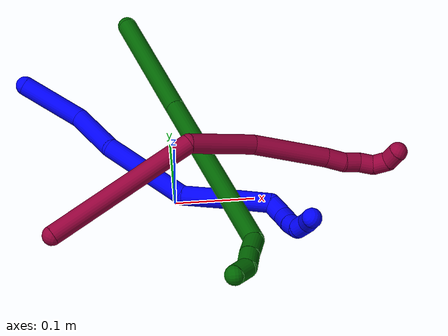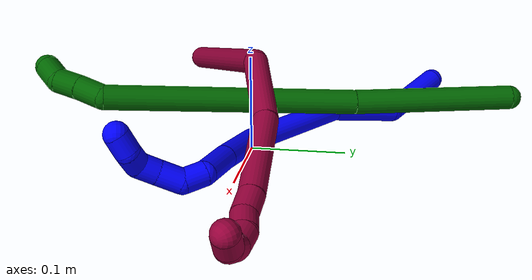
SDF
<sdf version="1.7">
 <world name="default">
  <model name="photoneo_s_sensor">
   <static>1</static>
   <pose>0 0 2 1.57079 1.57079 3.14159</pose>
   <link name="link">
    <inertial><mass>0.1</mass></inertial>
    <sensor name="sensor" type="depth">
     <update_rate>30</update_rate>
     <camera>
      <horizontal_fov>1.22</horizontal_fov>
      <image><width>1920</width><height>1200</height><format>B8G8R8</format></image>
      <clip><near>0.1</near><far>4</far></clip>
      <depth_camera><output>points</output></depth_camera>
     </camera>
     <plugin name="camera_plugin" filename="libgazebo_ros_depth_camera.so">
      <baseline>0.2</baseline>
      <alwaysOn>1</alwaysOn>
      <updateRate>0.0</updateRate>
      <cameraName>camera_ir</cameraName>
      <imageTopicName>/camera/color/image_raw</imageTopicName>
      <cameraInfoTopicName>/camera/color/camera_info</cameraInfoTopicName>
      <depthImageTopicName>/camera/depth/image_raw</depthImageTopicName>
      <depthImageCameraInfoTopicName>/camera/depth/camera_info</depthImageCameraInfoTopicName>
      <pointCloudTopicName>/camera/depth/points</pointCloudTopicName>
      <frameName>fr_optical</frameName>
      <pointCloudCutoff>0.1</pointCloudCutoff>
      <pointCloudCutoffMax>2.0</pointCloudCutoffMax>
      <distortionK1>0</distortionK1>
      <distortionK2>0</distortionK2>
      <distortionK3>0</distortionK3>
      <distortionT1>0</distortionT1>
      <distortionT2>0</distortionT2>
      <CxPrime>0</CxPrime>
      <Cx>0</Cx>
      <Cy>0</Cy>
      <focalLength>0</focalLength>
      <hackBaseline>0</hackBaseline>
     </plugin>
    </sensor>
   </link>
  </model>
  <model name="bin">
   <static>1</static>
   <link name="bottom">
    <collision name="collision-bottom">
     <pose>0 0 -0.01 0 -0 0</pose>
     <geometry><box><size>0.8 0.6 0.02</size></box></geometry>
     <surface>
      <friction><ode><mu>100</mu><mu2>100</mu2></ode></friction>
      <contact><collide_bitmask>65535</collide_bitmask></contact>
     </surface>
    </collision>
   </link>
   <link name="west_wall">
    <collision name="collision-west_wall">
     <pose>-0.41 0 0.1 0 -0 0</pose>
     <geometry><box><size>0.02 0.6 0.2</size></box></geometry>
     <surface>
      <friction><ode><mu>100</mu><mu2>100</mu2></ode></friction>
      <contact><collide_bitmask>65535</collide_bitmask></contact>
     </surface>
    </collision>
   </link>
   <link name="east_wall">
    <collision name="collision-east_wall">
     <pose>0.41 0 0.1 0 -0 0</pose>
     <geometry><box><size>0.02 0.6 0.2</size></box></geometry>
     <surface>
      <friction><ode><mu>100</mu><mu2>100</mu2></ode></friction>
      <contact><collide_bitmask>65535</collide_bitmask></contact>
     </surface>
    </collision>
   </link>
   <link name="south_wall">
    <collision name="collision-south_wall">
     <pose>0 -0.31 0.1 0 -0 0</pose>
     <geometry><box><size>0.8 0.02 0.2</size></box></geometry>
     <surface>
      <friction><ode><mu>100</mu><mu2>100</mu2></ode></friction>
      <contact><collide_bitmask>65535</collide_bitmask></contact>
     </surface>
    </collision>
   </link>
   <link name="north_wall">
    <collision name="collision-north_wall">
     <pose>0 0.31 0.1 0 -0 0</pose>
     <geometry><box><size>0.8 0.02 0.2</size></box></geometry>
     <surface>
      <friction><ode><mu>100</mu><mu2>100</mu2></ode></friction>
      <contact><collide_bitmask>65535</collide_bitmask></contact>
     </surface>
    </collision>
   </link>
  </model>
  <model name="1">
   <static>0</static>
   <link name="1">
    <collision name="collision-cylinder-e_1_1_4">
     <pose>0.019262 -0.02764 0.025845 0.818947 0.470846 0.207463</pose>
     <geometry><cylinder><radius>0.0125</radius><length>0.084923</length></cylinder></geometry>
     <surface>
      <friction><ode><mu>1.16</mu><mu2>1.16</mu2><slip1>0</slip1><slip2>0</slip2></ode></friction>
      <contact><ode><kp>1e+06</kp><kd>1</kd><max_vel>0</max_vel><min_depth>0.001</min_depth></ode></contact>
     </surface>
    </collision>
    <visual name="visual-cylinder-e_1_1_4">
     <pose>0.019262 -0.02764 0.025845 0.818947 0.470846 0.207463</pose>
     <geometry><cylinder><radius>0.0125</radius><length>0.084923</length></cylinder></geometry>
     <material><ambient>0 0 1 1</ambient></material>
    </visual>
    <collision name="collision-cylinder-e_2_4_5">
     <pose>0.063741 -0.08344 0.054414 1.47437 0.728003 0.666046</pose>
     <geometry><cylinder><radius>0.0125</radius><length>0.075797</length></cylinder></geometry>
     <surface>
      <friction><ode><mu>1.16</mu><mu2>1.16</mu2><slip1>0</slip1><slip2>0</slip2></ode></friction>
      <contact><ode><kp>1e+06</kp><kd>1</kd><max_vel>0</max_vel><min_depth>0.001</min_depth></ode></contact>
     </surface>
    </collision>
    <visual name="visual-cylinder-e_2_4_5">
     <pose>0.063741 -0.08344 0.054414 1.47437 0.728003 0.666046</pose>
     <geometry><cylinder><radius>0.0125</radius><length>0.075797</length></cylinder></geometry>
     <material><ambient>0 0 1 1</ambient></material>
    </visual>
    <collision name="collision-cylinder-e_3_5_6">
     <pose>0.120778 -0.154609 0.08231 1.04128 0.568255 0.331826</pose>
     <geometry><cylinder><radius>0.0125</radius><length>0.118253</length></cylinder></geometry>
     <surface>
      <friction><ode><mu>1.16</mu><mu2>1.16</mu2><slip1>0</slip1><slip2>0</slip2></ode></friction>
      <contact><ode><kp>1e+06</kp><kd>1</kd><max_vel>0</max_vel><min_depth>0.001</min_depth></ode></contact>
     </surface>
    </collision>
    <visual name="visual-cylinder-e_3_5_6">
     <pose>0.120778 -0.154609 0.08231 1.04128 0.568255 0.331826</pose>
     <geometry><cylinder><radius>0.0125</radius><length>0.118253</length></cylinder></geometry>
     <material><ambient>0 0 1 1</ambient></material>
    </visual>
    <collision name="collision-cylinder-e_4_6_7">
     <pose>0.15419 -0.225308 0.125951 0.982543 0.047815 0.025585</pose>
     <geometry><cylinder><radius>0.0125</radius><length>0.066644</length></cylinder></geometry>
     <surface>
      <friction><ode><mu>1.16</mu><mu2>1.16</mu2><slip1>0</slip1><slip2>0</slip2></ode></friction>
      <contact><ode><kp>1e+06</kp><kd>1</kd><max_vel>0</max_vel><min_depth>0.001</min_depth></ode></contact>
     </surface>
    </collision>
    <visual name="visual-cylinder-e_4_6_7">
     <pose>0.15419 -0.225308 0.125951 0.982543 0.047815 0.025585</pose>
     <geometry><cylinder><radius>0.0125</radius><length>0.066644</length></cylinder></geometry>
     <material><ambient>0 0 1 1</ambient></material>
    </visual>
    <collision name="collision-cylinder-e_5_7_8">
     <pose>0.1568 -0.271372 0.158174 0.928245 0.044317 0.022187</pose>
     <geometry><cylinder><radius>0.0125</radius><length>0.045948</length></cylinder></geometry>
     <surface>
      <friction><ode><mu>1.16</mu><mu2>1.16</mu2><slip1>0</slip1><slip2>0</slip2></ode></friction>
      <contact><ode><kp>1e+06</kp><kd>1</kd><max_vel>0</max_vel><min_depth>0.001</min_depth></ode></contact>
     </surface>
    </collision>
    <visual name="visual-cylinder-e_5_7_8">
     <pose>0.1568 -0.271372 0.158174 0.928245 0.044317 0.022187</pose>
     <geometry><cylinder><radius>0.0125</radius><length>0.045948</length></cylinder></geometry>
     <material><ambient>0 0 1 1</ambient></material>
    </visual>
    <collision name="collision-cylinder-e_6_8_9">
     <pose>0.165972 -0.296634 0.176099 1.0263 0.791667 0.462538</pose>
     <geometry><cylinder><radius>0.0125</radius><length>0.02292</length></cylinder></geometry>
     <surface>
      <friction><ode><mu>1.16</mu><mu2>1.16</mu2><slip1>0</slip1><slip2>0</slip2></ode></friction>
      <contact><ode><kp>1e+06</kp><kd>1</kd><max_vel>0</max_vel><min_depth>0.001</min_depth></ode></contact>
     </surface>
    </collision>
    <visual name="visual-cylinder-e_6_8_9">
     <pose>0.165972 -0.296634 0.176099 1.0263 0.791667 0.462538</pose>
     <geometry><cylinder><radius>0.0125</radius><length>0.02292</length></cylinder></geometry>
     <material><ambient>0 0 1 1</ambient></material>
    </visual>
    <collision name="collision-cylinder-e_7_9_10">
     <pose>0.181991 -0.312692 0.176398 1.97027 0.668691 0.964905</pose>
     <geometry><cylinder><radius>0.0125</radius><length>0.025372</length></cylinder></geometry>
     <surface>
      <friction><ode><mu>1.16</mu><mu2>1.16</mu2><slip1>0</slip1><slip2>0</slip2></ode></friction>
      <contact><ode><kp>1e+06</kp><kd>1</kd><max_vel>0</max_vel><min_depth>0.001</min_depth></ode></contact>
     </surface>
    </collision>
    <visual name="visual-cylinder-e_7_9_10">
     <pose>0.181991 -0.312692 0.176398 1.97027 0.668691 0.964905</pose>
     <geometry><cylinder><radius>0.0125</radius><length>0.025372</length></cylinder></geometry>
     <material><ambient>0 0 1 1</ambient></material>
    </visual>
    <collision name="collision-cylinder-e_8_10_11">
     <pose>0.195053 -0.330092 0.17007 1.86093 0.544109 0.716536</pose>
     <geometry><cylinder><radius>0.0125</radius><length>0.020078</length></cylinder></geometry>
     <surface>
      <friction><ode><mu>1.16</mu><mu2>1.16</mu2><slip1>0</slip1><slip2>0</slip2></ode></friction>
      <contact><ode><kp>1e+06</kp><kd>1</kd><max_vel>0</max_vel><min_depth>0.001</min_depth></ode></contact>
     </surface>
    </collision>
    <visual name="visual-cylinder-e_8_10_11">
     <pose>0.195053 -0.330092 0.17007 1.86093 0.544109 0.716536</pose>
     <geometry><cylinder><radius>0.0125</radius><length>0.020078</length></cylinder></geometry>
     <material><ambient>0 0 1 1</ambient></material>
    </visual>
    <collision name="collision-cylinder-e_9_11_12">
     <pose>0.198671 -0.347827 0.1649 1.84887 -0.158294 -0.209475</pose>
     <geometry><cylinder><radius>0.0125</radius><length>0.020018</length></cylinder></geometry>
     <surface>
      <friction><ode><mu>1.16</mu><mu2>1.16</mu2><slip1>0</slip1><slip2>0</slip2></ode></friction>
      <contact><ode><kp>1e+06</kp><kd>1</kd><max_vel>0</max_vel><min_depth>0.001</min_depth></ode></contact>
     </surface>
    </collision>
    <visual name="visual-cylinder-e_9_11_12">
     <pose>0.198671 -0.347827 0.1649 1.84887 -0.158294 -0.209475</pose>
     <geometry><cylinder><radius>0.0125</radius><length>0.020018</length></cylinder></geometry>
     <material><ambient>0 0 1 1</ambient></material>
    </visual>
    <collision name="collision-cylinder-e_10_12_2">
     <pose>0.197453 -0.365311 0.156131 2.21991 0.035895 0.072273</pose>
     <geometry><cylinder><radius>0.0125</radius><length>0.020047</length></cylinder></geometry>
     <surface>
      <friction><ode><mu>1.16</mu><mu2>1.16</mu2><slip1>0</slip1><slip2>0</slip2></ode></friction>
      <contact><ode><kp>1e+06</kp><kd>1</kd><max_vel>0</max_vel><min_depth>0.001</min_depth></ode></contact>
     </surface>
    </collision>
    <visual name="visual-cylinder-e_10_12_2">
     <pose>0.197453 -0.365311 0.156131 2.21991 0.035895 0.072273</pose>
     <geometry><cylinder><radius>0.0125</radius><length>0.020047</length></cylinder></geometry>
     <material><ambient>0 0 1 1</ambient></material>
    </visual>
    <collision name="collision-sphere-2">
     <pose>0.197813 -0.373291 0.150076 0 -0 0</pose>
     <geometry><sphere><radius>0.0125</radius></sphere></geometry>
     <surface>
      <friction><ode><mu>1.16</mu><mu2>1.16</mu2><slip1>0</slip1><slip2>0</slip2></ode></friction>
      <contact><ode><kp>1e+06</kp><kd>1</kd><max_vel>0</max_vel><min_depth>0.001</min_depth></ode></contact>
     </surface>
    </collision>
    <visual name="visual-sphere-2">
     <pose>0.197813 -0.373291 0.150076 0 -0 0</pose>
     <geometry><sphere><radius>0.0125</radius></sphere></geometry>
     <material><ambient>0 0 1 1</ambient></material>
    </visual>
    <collision name="collision-sphere-12">
     <pose>0.197094 -0.357331 0.162186 0 -0 0</pose>
     <geometry><sphere><radius>0.0125</radius></sphere></geometry>
     <surface>
      <friction><ode><mu>1.16</mu><mu2>1.16</mu2><slip1>0</slip1><slip2>0</slip2></ode></friction>
      <contact><ode><kp>1e+06</kp><kd>1</kd><max_vel>0</max_vel><min_depth>0.001</min_depth></ode></contact>
     </surface>
    </collision>
    <visual name="visual-sphere-12">
     <pose>0.197094 -0.357331 0.162186 0 -0 0</pose>
     <geometry><sphere><radius>0.0125</radius></sphere></geometry>
     <material><ambient>0 0 1 1</ambient></material>
    </visual>
    <collision name="collision-sphere-11">
     <pose>0.200249 -0.338323 0.167613 0 -0 0</pose>
     <geometry><sphere><radius>0.0125</radius></sphere></geometry>
     <surface>
      <friction><ode><mu>1.16</mu><mu2>1.16</mu2><slip1>0</slip1><slip2>0</slip2></ode></friction>
      <contact><ode><kp>1e+06</kp><kd>1</kd><max_vel>0</max_vel><min_depth>0.001</min_depth></ode></contact>
     </surface>
    </collision>
    <visual name="visual-sphere-11">
     <pose>0.200249 -0.338323 0.167613 0 -0 0</pose>
     <geometry><sphere><radius>0.0125</radius></sphere></geometry>
     <material><ambient>0 0 1 1</ambient></material>
    </visual>
    <collision name="collision-sphere-10">
     <pose>0.189856 -0.321862 0.172527 0 -0 0</pose>
     <geometry><sphere><radius>0.0125</radius></sphere></geometry>
     <surface>
      <friction><ode><mu>1.16</mu><mu2>1.16</mu2><slip1>0</slip1><slip2>0</slip2></ode></friction>
      <contact><ode><kp>1e+06</kp><kd>1</kd><max_vel>0</max_vel><min_depth>0.001</min_depth></ode></contact>
     </surface>
    </collision>
    <visual name="visual-sphere-10">
     <pose>0.189856 -0.321862 0.172527 0 -0 0</pose>
     <geometry><sphere><radius>0.0125</radius></sphere></geometry>
     <material><ambient>0 0 1 1</ambient></material>
    </visual>
    <collision name="collision-sphere-9">
     <pose>0.174126 -0.303522 0.18027 0 -0 0</pose>
     <geometry><sphere><radius>0.0125</radius></sphere></geometry>
     <surface>
      <friction><ode><mu>1.16</mu><mu2>1.16</mu2><slip1>0</slip1><slip2>0</slip2></ode></friction>
      <contact><ode><kp>1e+06</kp><kd>1</kd><max_vel>0</max_vel><min_depth>0.001</min_depth></ode></contact>
     </surface>
    </collision>
    <visual name="visual-sphere-9">
     <pose>0.174126 -0.303522 0.18027 0 -0 0</pose>
     <geometry><sphere><radius>0.0125</radius></sphere></geometry>
     <material><ambient>0 0 1 1</ambient></material>
    </visual>
    <collision name="collision-sphere-4">
     <pose>0.038524 -0.05528 0.05169 0 -0 0</pose>
     <geometry><sphere><radius>0.0125</radius></sphere></geometry>
     <surface>
      <friction><ode><mu>1.16</mu><mu2>1.16</mu2><slip1>0</slip1><slip2>0</slip2></ode></friction>
      <contact><ode><kp>1e+06</kp><kd>1</kd><max_vel>0</max_vel><min_depth>0.001</min_depth></ode></contact>
     </surface>
    </collision>
    <visual name="visual-sphere-4">
     <pose>0.038524 -0.05528 0.05169 0 -0 0</pose>
     <geometry><sphere><radius>0.0125</radius></sphere></geometry>
     <material><ambient>0 0 1 1</ambient></material>
    </visual>
    <collision name="collision-sphere-1">
     <geometry><sphere><radius>0.0125</radius></sphere></geometry>
     <surface>
      <friction><ode><mu>1.16</mu><mu2>1.16</mu2><slip1>0</slip1><slip2>0</slip2></ode></friction>
      <contact><ode><kp>1e+06</kp><kd>1</kd><max_vel>0</max_vel><min_depth>0.001</min_depth></ode></contact>
     </surface>
    </collision>
    <visual name="visual-sphere-1">
     <geometry><sphere><radius>0.0125</radius></sphere></geometry>
     <material><ambient>0 0 1 1</ambient></material>
    </visual>
    <collision name="collision-sphere-8">
     <pose>0.157818 -0.289746 0.171928 0 -0 0</pose>
     <geometry><sphere><radius>0.0125</radius></sphere></geometry>
     <surface>
      <friction><ode><mu>1.16</mu><mu2>1.16</mu2><slip1>0</slip1><slip2>0</slip2></ode></friction>
      <contact><ode><kp>1e+06</kp><kd>1</kd><max_vel>0</max_vel><min_depth>0.001</min_depth></ode></contact>
     </surface>
    </collision>
    <visual name="visual-sphere-8">
     <pose>0.157818 -0.289746 0.171928 0 -0 0</pose>
     <geometry><sphere><radius>0.0125</radius></sphere></geometry>
     <material><ambient>0 0 1 1</ambient></material>
    </visual>
    <collision name="collision-sphere-5">
     <pose>0.088958 -0.1116 0.057138 0 -0 0</pose>
     <geometry><sphere><radius>0.0125</radius></sphere></geometry>
     <surface>
      <friction><ode><mu>1.16</mu><mu2>1.16</mu2><slip1>0</slip1><slip2>0</slip2></ode></friction>
      <contact><ode><kp>1e+06</kp><kd>1</kd><max_vel>0</max_vel><min_depth>0.001</min_depth></ode></contact>
     </surface>
    </collision>
    <visual name="visual-sphere-5">
     <pose>0.088958 -0.1116 0.057138 0 -0 0</pose>
     <geometry><sphere><radius>0.0125</radius></sphere></geometry>
     <material><ambient>0 0 1 1</ambient></material>
    </visual>
    <collision name="collision-sphere-6">
     <pose>0.152597 -0.197619 0.107482 0 -0 0</pose>
     <geometry><sphere><radius>0.0125</radius></sphere></geometry>
     <surface>
      <friction><ode><mu>1.16</mu><mu2>1.16</mu2><slip1>0</slip1><slip2>0</slip2></ode></friction>
      <contact><ode><kp>1e+06</kp><kd>1</kd><max_vel>0</max_vel><min_depth>0.001</min_depth></ode></contact>
     </surface>
    </collision>
    <visual name="visual-sphere-6">
     <pose>0.152597 -0.197619 0.107482 0 -0 0</pose>
     <geometry><sphere><radius>0.0125</radius></sphere></geometry>
     <material><ambient>0 0 1 1</ambient></material>
    </visual>
    <collision name="collision-sphere-7">
     <pose>0.155782 -0.252997 0.144421 0 -0 0</pose>
     <geometry><sphere><radius>0.0125</radius></sphere></geometry>
     <surface>
      <friction><ode><mu>1.16</mu><mu2>1.16</mu2><slip1>0</slip1><slip2>0</slip2></ode></friction>
      <contact><ode><kp>1e+06</kp><kd>1</kd><max_vel>0</max_vel><min_depth>0.001</min_depth></ode></contact>
     </surface>
    </collision>
    <visual name="visual-sphere-7">
     <pose>0.155782 -0.252997 0.144421 0 -0 0</pose>
     <geometry><sphere><radius>0.0125</radius></sphere></geometry>
     <material><ambient>0 0 1 1</ambient></material>
    </visual>
    <inertial>
     <pose>0.117007 -0.180171 0.100143 0 -0 0</pose>
     <mass>0.5</mass>
     <inertia>
      <ixx>0.000313</ixx>
      <ixy>0</ixy>
      <ixz>0</ixz>
      <iyy>0.000212</iyy>
      <iyz>0</iyz>
      <izz>8.4e-05</izz>
     </inertia>
    </inertial>
   </link>
   <pose>-0.184834 0.191086 0.032102 -2.47096 0.374016 -1.73083</pose>
  </model>
  <model name="6">
   <static>0</static>
   <link name="6">
    <collision name="collision-cylinder-e_1_1_4">
     <pose>-0.018511 -0.078142 -0.026326 1.89575 -0.22083 -0.30626</pose>
     <geometry><cylinder><radius>0.0125</radius><length>0.169019</length></cylinder></geometry>
     <surface>
      <friction><ode><mu>1.16</mu><mu2>1.16</mu2><slip1>0</slip1><slip2>0</slip2></ode></friction>
      <contact><ode><kp>1e+06</kp><kd>1</kd><max_vel>0</max_vel><min_depth>0.001</min_depth></ode></contact>
     </surface>
    </collision>
    <visual name="visual-cylinder-e_1_1_4">
     <pose>-0.018511 -0.078142 -0.026326 1.89575 -0.22083 -0.30626</pose>
     <geometry><cylinder><radius>0.0125</radius><length>0.169019</length></cylinder></geometry>
     <material><ambient>0 0.392157 0.003922 1</ambient></material>
    </visual>
    <collision name="collision-cylinder-e_2_4_5">
     <pose>-0.059066 -0.27505 -0.090744 1.88117 -0.174933 -0.239284</pose>
     <geometry><cylinder><radius>0.0125</radius><length>0.253316</length></cylinder></geometry>
     <surface>
      <friction><ode><mu>1.16</mu><mu2>1.16</mu2><slip1>0</slip1><slip2>0</slip2></ode></friction>
      <contact><ode><kp>1e+06</kp><kd>1</kd><max_vel>0</max_vel><min_depth>0.001</min_depth></ode></contact>
     </surface>
    </collision>
    <visual name="visual-cylinder-e_2_4_5">
     <pose>-0.059066 -0.27505 -0.090744 1.88117 -0.174933 -0.239284</pose>
     <geometry><cylinder><radius>0.0125</radius><length>0.253316</length></cylinder></geometry>
     <material><ambient>0 0.392157 0.003922 1</ambient></material>
    </visual>
    <collision name="collision-cylinder-e_3_5_6">
     <pose>-0.080881 -0.407378 -0.124793 1.28102 0.016171 0.012053</pose>
     <geometry><cylinder><radius>0.0125</radius><length>0.028308</length></cylinder></geometry>
     <surface>
      <friction><ode><mu>1.16</mu><mu2>1.16</mu2><slip1>0</slip1><slip2>0</slip2></ode></friction>
      <contact><ode><kp>1e+06</kp><kd>1</kd><max_vel>0</max_vel><min_depth>0.001</min_depth></ode></contact>
     </surface>
    </collision>
    <visual name="visual-cylinder-e_3_5_6">
     <pose>-0.080881 -0.407378 -0.124793 1.28102 0.016171 0.012053</pose>
     <geometry><cylinder><radius>0.0125</radius><length>0.028308</length></cylinder></geometry>
     <material><ambient>0 0.392157 0.003922 1</ambient></material>
    </visual>
    <collision name="collision-cylinder-e_4_6_7">
     <pose>-0.080955 -0.432943 -0.118171 1.35919 -0.024679 -0.019941</pose>
     <geometry><cylinder><radius>0.0125</radius><length>0.024562</length></cylinder></geometry>
     <surface>
      <friction><ode><mu>1.16</mu><mu2>1.16</mu2><slip1>0</slip1><slip2>0</slip2></ode></friction>
      <contact><ode><kp>1e+06</kp><kd>1</kd><max_vel>0</max_vel><min_depth>0.001</min_depth></ode></contact>
     </surface>
    </collision>
    <visual name="visual-cylinder-e_4_6_7">
     <pose>-0.080955 -0.432943 -0.118171 1.35919 -0.024679 -0.019941</pose>
     <geometry><cylinder><radius>0.0125</radius><length>0.024562</length></cylinder></geometry>
     <material><ambient>0 0.392157 0.003922 1</ambient></material>
    </visual>
    <collision name="collision-cylinder-e_5_7_2">
     <pose>-0.078421 -0.454314 -0.107983 0.888546 0.230866 0.110274</pose>
     <geometry><cylinder><radius>0.0125</radius><length>0.024794</length></cylinder></geometry>
     <surface>
      <friction><ode><mu>1.16</mu><mu2>1.16</mu2><slip1>0</slip1><slip2>0</slip2></ode></friction>
      <contact><ode><kp>1e+06</kp><kd>1</kd><max_vel>0</max_vel><min_depth>0.001</min_depth></ode></contact>
     </surface>
    </collision>
    <visual name="visual-cylinder-e_5_7_2">
     <pose>-0.078421 -0.454314 -0.107983 0.888546 0.230866 0.110274</pose>
     <geometry><cylinder><radius>0.0125</radius><length>0.024794</length></cylinder></geometry>
     <material><ambient>0 0.392157 0.003922 1</ambient></material>
    </visual>
    <collision name="collision-sphere-2">
     <pose>-0.075585 -0.46368 -0.100373 0 -0 0</pose>
     <geometry><sphere><radius>0.0125</radius></sphere></geometry>
     <surface>
      <friction><ode><mu>1.16</mu><mu2>1.16</mu2><slip1>0</slip1><slip2>0</slip2></ode></friction>
      <contact><ode><kp>1e+06</kp><kd>1</kd><max_vel>0</max_vel><min_depth>0.001</min_depth></ode></contact>
     </surface>
    </collision>
    <visual name="visual-sphere-2">
     <pose>-0.075585 -0.46368 -0.100373 0 -0 0</pose>
     <geometry><sphere><radius>0.0125</radius></sphere></geometry>
     <material><ambient>0 0.392157 0.003922 1</ambient></material>
    </visual>
    <collision name="collision-sphere-7">
     <pose>-0.081258 -0.444947 -0.115592 0 -0 0</pose>
     <geometry><sphere><radius>0.0125</radius></sphere></geometry>
     <surface>
      <friction><ode><mu>1.16</mu><mu2>1.16</mu2><slip1>0</slip1><slip2>0</slip2></ode></friction>
      <contact><ode><kp>1e+06</kp><kd>1</kd><max_vel>0</max_vel><min_depth>0.001</min_depth></ode></contact>
     </surface>
    </collision>
    <visual name="visual-sphere-7">
     <pose>-0.081258 -0.444947 -0.115592 0 -0 0</pose>
     <geometry><sphere><radius>0.0125</radius></sphere></geometry>
     <material><ambient>0 0.392157 0.003922 1</ambient></material>
    </visual>
    <collision name="collision-sphere-6">
     <pose>-0.080652 -0.42094 -0.120749 0 -0 0</pose>
     <geometry><sphere><radius>0.0125</radius></sphere></geometry>
     <surface>
      <friction><ode><mu>1.16</mu><mu2>1.16</mu2><slip1>0</slip1><slip2>0</slip2></ode></friction>
      <contact><ode><kp>1e+06</kp><kd>1</kd><max_vel>0</max_vel><min_depth>0.001</min_depth></ode></contact>
     </surface>
    </collision>
    <visual name="visual-sphere-6">
     <pose>-0.080652 -0.42094 -0.120749 0 -0 0</pose>
     <geometry><sphere><radius>0.0125</radius></sphere></geometry>
     <material><ambient>0 0.392157 0.003922 1</ambient></material>
    </visual>
    <collision name="collision-sphere-5">
     <pose>-0.08111 -0.393816 -0.128837 0 -0 0</pose>
     <geometry><sphere><radius>0.0125</radius></sphere></geometry>
     <surface>
      <friction><ode><mu>1.16</mu><mu2>1.16</mu2><slip1>0</slip1><slip2>0</slip2></ode></friction>
      <contact><ode><kp>1e+06</kp><kd>1</kd><max_vel>0</max_vel><min_depth>0.001</min_depth></ode></contact>
     </surface>
    </collision>
    <visual name="visual-sphere-5">
     <pose>-0.08111 -0.393816 -0.128837 0 -0 0</pose>
     <geometry><sphere><radius>0.0125</radius></sphere></geometry>
     <material><ambient>0 0.392157 0.003922 1</ambient></material>
    </visual>
    <collision name="collision-sphere-1">
     <geometry><sphere><radius>0.0125</radius></sphere></geometry>
     <surface>
      <friction><ode><mu>1.16</mu><mu2>1.16</mu2><slip1>0</slip1><slip2>0</slip2></ode></friction>
      <contact><ode><kp>1e+06</kp><kd>1</kd><max_vel>0</max_vel><min_depth>0.001</min_depth></ode></contact>
     </surface>
    </collision>
    <visual name="visual-sphere-1">
     <geometry><sphere><radius>0.0125</radius></sphere></geometry>
     <material><ambient>0 0.392157 0.003922 1</ambient></material>
    </visual>
    <collision name="collision-sphere-4">
     <pose>-0.037022 -0.156284 -0.052651 0 -0 0</pose>
     <geometry><sphere><radius>0.0125</radius></sphere></geometry>
     <surface>
      <friction><ode><mu>1.16</mu><mu2>1.16</mu2><slip1>0</slip1><slip2>0</slip2></ode></friction>
      <contact><ode><kp>1e+06</kp><kd>1</kd><max_vel>0</max_vel><min_depth>0.001</min_depth></ode></contact>
     </surface>
    </collision>
    <visual name="visual-sphere-4">
     <pose>-0.037022 -0.156284 -0.052651 0 -0 0</pose>
     <geometry><sphere><radius>0.0125</radius></sphere></geometry>
     <material><ambient>0 0.392157 0.003922 1</ambient></material>
    </visual>
    <inertial>
     <pose>-0.048627 -0.232625 -0.073098 0 -0 0</pose>
     <mass>0.5</mass>
     <inertia>
      <ixx>0.001249</ixx>
      <ixy>0</ixy>
      <ixz>0</ixz>
      <iyy>-0.000922</iyy>
      <iyz>0</iyz>
      <izz>0.001983</izz>
     </inertia>
    </inertial>
   </link>
   <pose>-0.045916 0.269535 0.054932 -1.81329 -1.32423 1.81679</pose>
  </model>
  <model name="8">
   <static>0</static>
   <link name="8">
    <collision name="collision-cylinder-e_1_1_4">
     <pose>0.088235 0.024227 0.043324 -0.509883 1.05836 -0.302493</pose>
     <geometry><cylinder><radius>0.0125</radius><length>0.202477</length></cylinder></geometry>
     <surface>
      <friction><ode><mu>1.16</mu><mu2>1.16</mu2><slip1>0</slip1><slip2>0</slip2></ode></friction>
      <contact><ode><kp>1e+06</kp><kd>1</kd><max_vel>0</max_vel><min_depth>0.001</min_depth></ode></contact>
     </surface>
    </collision>
    <visual name="visual-cylinder-e_1_1_4">
     <pose>0.088235 0.024227 0.043324 -0.509883 1.05836 -0.302493</pose>
     <geometry><cylinder><radius>0.0125</radius><length>0.202477</length></cylinder></geometry>
     <material><ambient>0.584314 0 0.227451 1</ambient></material>
    </visual>
    <collision name="collision-cylinder-e_2_4_5">
     <pose>0.208418 0.033439 0.115852 0.474885 0.771663 0.195973</pose>
     <geometry><cylinder><radius>0.0125</radius><length>0.09163</length></cylinder></geometry>
     <surface>
      <friction><ode><mu>1.16</mu><mu2>1.16</mu2><slip1>0</slip1><slip2>0</slip2></ode></friction>
      <contact><ode><kp>1e+06</kp><kd>1</kd><max_vel>0</max_vel><min_depth>0.001</min_depth></ode></contact>
     </surface>
    </collision>
    <visual name="visual-cylinder-e_2_4_5">
     <pose>0.208418 0.033439 0.115852 0.474885 0.771663 0.195973</pose>
     <geometry><cylinder><radius>0.0125</radius><length>0.09163</length></cylinder></geometry>
     <material><ambient>0.584314 0 0.227451 1</ambient></material>
    </visual>
    <collision name="collision-cylinder-e_3_5_6">
     <pose>0.267105 0.003596 0.184958 0.355795 0.56086 0.103479</pose>
     <geometry><cylinder><radius>0.0125</radius><length>0.100538</length></cylinder></geometry>
     <surface>
      <friction><ode><mu>1.16</mu><mu2>1.16</mu2><slip1>0</slip1><slip2>0</slip2></ode></friction>
      <contact><ode><kp>1e+06</kp><kd>1</kd><max_vel>0</max_vel><min_depth>0.001</min_depth></ode></contact>
     </surface>
    </collision>
    <visual name="visual-cylinder-e_3_5_6">
     <pose>0.267105 0.003596 0.184958 0.355795 0.56086 0.103479</pose>
     <geometry><cylinder><radius>0.0125</radius><length>0.100538</length></cylinder></geometry>
     <material><ambient>0.584314 0 0.227451 1</ambient></material>
    </visual>
    <collision name="collision-cylinder-e_4_6_7">
     <pose>0.299179 -0.014647 0.235477 0.311252 0.446195 0.071161</pose>
     <geometry><cylinder><radius>0.0125</radius><length>0.024729</length></cylinder></geometry>
     <surface>
      <friction><ode><mu>1.16</mu><mu2>1.16</mu2><slip1>0</slip1><slip2>0</slip2></ode></friction>
      <contact><ode><kp>1e+06</kp><kd>1</kd><max_vel>0</max_vel><min_depth>0.001</min_depth></ode></contact>
     </surface>
    </collision>
    <visual name="visual-cylinder-e_4_6_7">
     <pose>0.299179 -0.014647 0.235477 0.311252 0.446195 0.071161</pose>
     <geometry><cylinder><radius>0.0125</radius><length>0.024729</length></cylinder></geometry>
     <material><ambient>0.584314 0 0.227451 1</ambient></material>
    </visual>
    <collision name="collision-cylinder-e_5_7_8">
     <pose>0.311322 -0.020237 0.253484 0.286143 0.723807 0.108964</pose>
     <geometry><cylinder><radius>0.0125</radius><length>0.020559</length></cylinder></geometry>
     <surface>
      <friction><ode><mu>1.16</mu><mu2>1.16</mu2><slip1>0</slip1><slip2>0</slip2></ode></friction>
      <contact><ode><kp>1e+06</kp><kd>1</kd><max_vel>0</max_vel><min_depth>0.001</min_depth></ode></contact>
     </surface>
    </collision>
    <visual name="visual-cylinder-e_5_7_8">
     <pose>0.311322 -0.020237 0.253484 0.286143 0.723807 0.108964</pose>
     <geometry><cylinder><radius>0.0125</radius><length>0.020559</length></cylinder></geometry>
     <material><ambient>0.584314 0 0.227451 1</ambient></material>
    </visual>
    <collision name="collision-cylinder-e_6_8_9">
     <pose>0.322062 -0.023548 0.27002 0.123685 0.403271 0.025314</pose>
     <geometry><cylinder><radius>0.0125</radius><length>0.020042</length></cylinder></geometry>
     <surface>
      <friction><ode><mu>1.16</mu><mu2>1.16</mu2><slip1>0</slip1><slip2>0</slip2></ode></friction>
      <contact><ode><kp>1e+06</kp><kd>1</kd><max_vel>0</max_vel><min_depth>0.001</min_depth></ode></contact>
     </surface>
    </collision>
    <visual name="visual-cylinder-e_6_8_9">
     <pose>0.322062 -0.023548 0.27002 0.123685 0.403271 0.025314</pose>
     <geometry><cylinder><radius>0.0125</radius><length>0.020042</length></cylinder></geometry>
     <material><ambient>0.584314 0 0.227451 1</ambient></material>
    </visual>
    <collision name="collision-cylinder-e_7_9_10">
     <pose>0.330443 -0.020199 0.286931 -0.523932 0.460467 -0.125528</pose>
     <geometry><cylinder><radius>0.0125</radius><length>0.02002</length></cylinder></geometry>
     <surface>
      <friction><ode><mu>1.16</mu><mu2>1.16</mu2><slip1>0</slip1><slip2>0</slip2></ode></friction>
      <contact><ode><kp>1e+06</kp><kd>1</kd><max_vel>0</max_vel><min_depth>0.001</min_depth></ode></contact>
     </surface>
    </collision>
    <visual name="visual-cylinder-e_7_9_10">
     <pose>0.330443 -0.020199 0.286931 -0.523932 0.460467 -0.125528</pose>
     <geometry><cylinder><radius>0.0125</radius><length>0.02002</length></cylinder></geometry>
     <material><ambient>0.584314 0 0.227451 1</ambient></material>
    </visual>
    <collision name="collision-cylinder-e_8_10_2">
     <pose>0.33802 -0.006999 0.298479 -1.16117 0.318217 -0.209759</pose>
     <geometry><cylinder><radius>0.0125</radius><length>0.020005</length></cylinder></geometry>
     <surface>
      <friction><ode><mu>1.16</mu><mu2>1.16</mu2><slip1>0</slip1><slip2>0</slip2></ode></friction>
      <contact><ode><kp>1e+06</kp><kd>1</kd><max_vel>0</max_vel><min_depth>0.001</min_depth></ode></contact>
     </surface>
    </collision>
    <visual name="visual-cylinder-e_8_10_2">
     <pose>0.33802 -0.006999 0.298479 -1.16117 0.318217 -0.209759</pose>
     <geometry><cylinder><radius>0.0125</radius><length>0.020005</length></cylinder></geometry>
     <material><ambient>0.584314 0 0.227451 1</ambient></material>
    </visual>
    <collision name="collision-sphere-2">
     <pose>0.34115 0.001716 0.302263 0 -0 0</pose>
     <geometry><sphere><radius>0.0125</radius></sphere></geometry>
     <surface>
      <friction><ode><mu>1.16</mu><mu2>1.16</mu2><slip1>0</slip1><slip2>0</slip2></ode></friction>
      <contact><ode><kp>1e+06</kp><kd>1</kd><max_vel>0</max_vel><min_depth>0.001</min_depth></ode></contact>
     </surface>
    </collision>
    <visual name="visual-sphere-2">
     <pose>0.34115 0.001716 0.302263 0 -0 0</pose>
     <geometry><sphere><radius>0.0125</radius></sphere></geometry>
     <material><ambient>0.584314 0 0.227451 1</ambient></material>
    </visual>
    <collision name="collision-sphere-10">
     <pose>0.334891 -0.015713 0.294696 0 -0 0</pose>
     <geometry><sphere><radius>0.0125</radius></sphere></geometry>
     <surface>
      <friction><ode><mu>1.16</mu><mu2>1.16</mu2><slip1>0</slip1><slip2>0</slip2></ode></friction>
      <contact><ode><kp>1e+06</kp><kd>1</kd><max_vel>0</max_vel><min_depth>0.001</min_depth></ode></contact>
     </surface>
    </collision>
    <visual name="visual-sphere-10">
     <pose>0.334891 -0.015713 0.294696 0 -0 0</pose>
     <geometry><sphere><radius>0.0125</radius></sphere></geometry>
     <material><ambient>0.584314 0 0.227451 1</ambient></material>
    </visual>
    <collision name="collision-sphere-9">
     <pose>0.325995 -0.024685 0.279167 0 -0 0</pose>
     <geometry><sphere><radius>0.0125</radius></sphere></geometry>
     <surface>
      <friction><ode><mu>1.16</mu><mu2>1.16</mu2><slip1>0</slip1><slip2>0</slip2></ode></friction>
      <contact><ode><kp>1e+06</kp><kd>1</kd><max_vel>0</max_vel><min_depth>0.001</min_depth></ode></contact>
     </surface>
    </collision>
    <visual name="visual-sphere-9">
     <pose>0.325995 -0.024685 0.279167 0 -0 0</pose>
     <geometry><sphere><radius>0.0125</radius></sphere></geometry>
     <material><ambient>0.584314 0 0.227451 1</ambient></material>
    </visual>
    <collision name="collision-sphere-4">
     <pose>0.176469 0.048454 0.086647 0 -0 0</pose>
     <geometry><sphere><radius>0.0125</radius></sphere></geometry>
     <surface>
      <friction><ode><mu>1.16</mu><mu2>1.16</mu2><slip1>0</slip1><slip2>0</slip2></ode></friction>
      <contact><ode><kp>1e+06</kp><kd>1</kd><max_vel>0</max_vel><min_depth>0.001</min_depth></ode></contact>
     </surface>
    </collision>
    <visual name="visual-sphere-4">
     <pose>0.176469 0.048454 0.086647 0 -0 0</pose>
     <geometry><sphere><radius>0.0125</radius></sphere></geometry>
     <material><ambient>0.584314 0 0.227451 1</ambient></material>
    </visual>
    <collision name="collision-sphere-1">
     <geometry><sphere><radius>0.0125</radius></sphere></geometry>
     <surface>
      <friction><ode><mu>1.16</mu><mu2>1.16</mu2><slip1>0</slip1><slip2>0</slip2></ode></friction>
      <contact><ode><kp>1e+06</kp><kd>1</kd><max_vel>0</max_vel><min_depth>0.001</min_depth></ode></contact>
     </surface>
    </collision>
    <visual name="visual-sphere-1">
     <geometry><sphere><radius>0.0125</radius></sphere></geometry>
     <material><ambient>0.584314 0 0.227451 1</ambient></material>
    </visual>
    <collision name="collision-sphere-8">
     <pose>0.31813 -0.022411 0.260873 0 -0 0</pose>
     <geometry><sphere><radius>0.0125</radius></sphere></geometry>
     <surface>
      <friction><ode><mu>1.16</mu><mu2>1.16</mu2><slip1>0</slip1><slip2>0</slip2></ode></friction>
      <contact><ode><kp>1e+06</kp><kd>1</kd><max_vel>0</max_vel><min_depth>0.001</min_depth></ode></contact>
     </surface>
    </collision>
    <visual name="visual-sphere-8">
     <pose>0.31813 -0.022411 0.260873 0 -0 0</pose>
     <geometry><sphere><radius>0.0125</radius></sphere></geometry>
     <material><ambient>0.584314 0 0.227451 1</ambient></material>
    </visual>
    <collision name="collision-sphere-5">
     <pose>0.240366 0.018424 0.145056 0 -0 0</pose>
     <geometry><sphere><radius>0.0125</radius></sphere></geometry>
     <surface>
      <friction><ode><mu>1.16</mu><mu2>1.16</mu2><slip1>0</slip1><slip2>0</slip2></ode></friction>
      <contact><ode><kp>1e+06</kp><kd>1</kd><max_vel>0</max_vel><min_depth>0.001</min_depth></ode></contact>
     </surface>
    </collision>
    <visual name="visual-sphere-5">
     <pose>0.240366 0.018424 0.145056 0 -0 0</pose>
     <geometry><sphere><radius>0.0125</radius></sphere></geometry>
     <material><ambient>0.584314 0 0.227451 1</ambient></material>
    </visual>
    <collision name="collision-sphere-6">
     <pose>0.293843 -0.011231 0.224859 0 -0 0</pose>
     <geometry><sphere><radius>0.0125</radius></sphere></geometry>
     <surface>
      <friction><ode><mu>1.16</mu><mu2>1.16</mu2><slip1>0</slip1><slip2>0</slip2></ode></friction>
      <contact><ode><kp>1e+06</kp><kd>1</kd><max_vel>0</max_vel><min_depth>0.001</min_depth></ode></contact>
     </surface>
    </collision>
    <visual name="visual-sphere-6">
     <pose>0.293843 -0.011231 0.224859 0 -0 0</pose>
     <geometry><sphere><radius>0.0125</radius></sphere></geometry>
     <material><ambient>0.584314 0 0.227451 1</ambient></material>
    </visual>
    <collision name="collision-sphere-7">
     <pose>0.304515 -0.018063 0.246095 0 -0 0</pose>
     <geometry><sphere><radius>0.0125</radius></sphere></geometry>
     <surface>
      <friction><ode><mu>1.16</mu><mu2>1.16</mu2><slip1>0</slip1><slip2>0</slip2></ode></friction>
      <contact><ode><kp>1e+06</kp><kd>1</kd><max_vel>0</max_vel><min_depth>0.001</min_depth></ode></contact>
     </surface>
    </collision>
    <visual name="visual-sphere-7">
     <pose>0.304515 -0.018063 0.246095 0 -0 0</pose>
     <geometry><sphere><radius>0.0125</radius></sphere></geometry>
     <material><ambient>0.584314 0 0.227451 1</ambient></material>
    </visual>
    <inertial>
     <pose>0.194896 0.013073 0.132289 0 -0 0</pose>
     <mass>0.5</mass>
     <inertia>
      <ixx>0.000398</ixx>
      <ixy>0</ixy>
      <ixz>0</ixz>
      <iyy>0.000741</iyy>
      <iyz>0</iyz>
      <izz>-0.000804</izz>
     </inertia>
    </inertial>
   </link>
   <pose>-0.153506 -0.089406 0.057975 1.66068 -0.01336 0.992789</pose>
  </model>
 </world>
</sdf>
